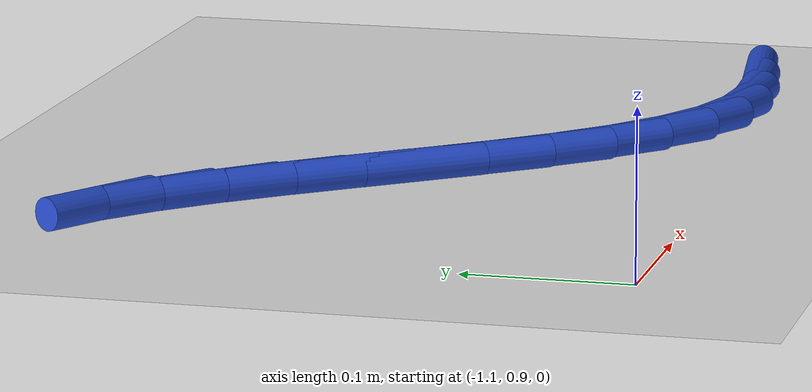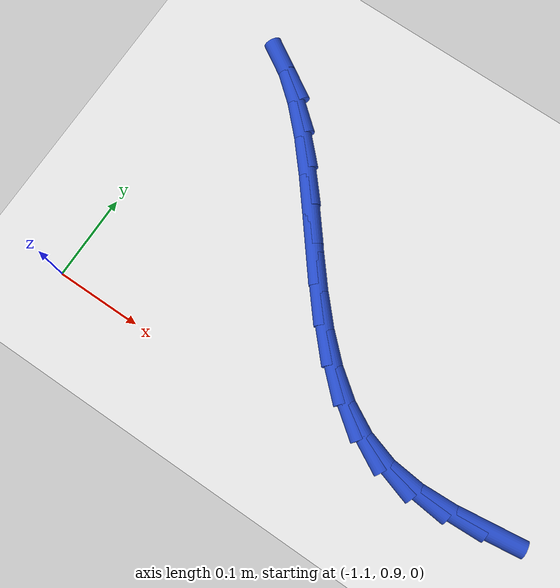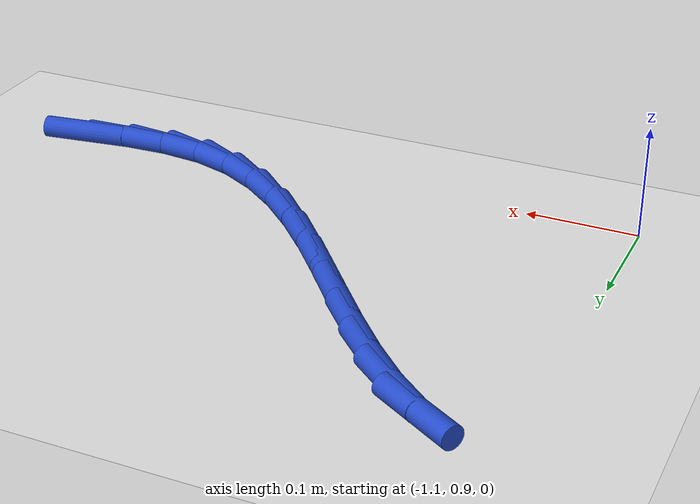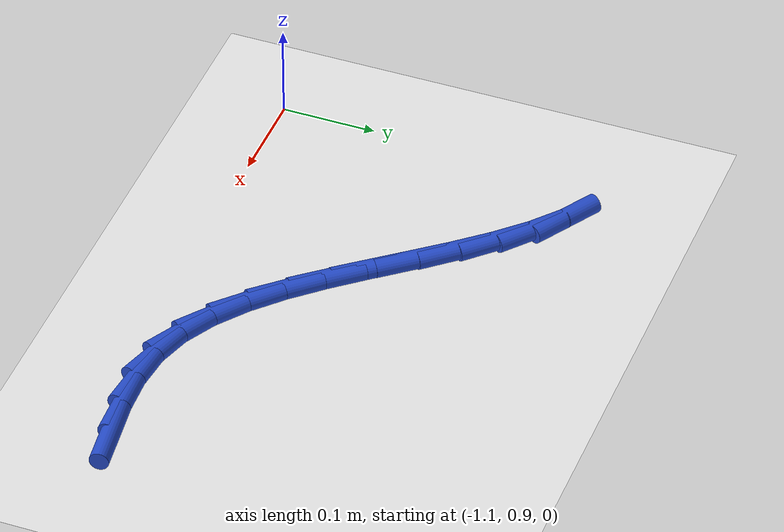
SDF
<sdf version="1.6">
 <world name="default">
  <model name="ground_plane">
   <static>1</static>
   <link name="link">
    <collision name="collision">
     <geometry><plane><normal>0 0 1</normal><size>100 100</size></plane></geometry>
     <surface><friction><ode><mu>100</mu><mu2>50</mu2></ode></friction></surface>
    </collision>
    <visual name="visual">
     <cast_shadows>0</cast_shadows>
     <geometry><plane><normal>0 0 1</normal><size>100 100</size></plane></geometry>
     <material>
      <script><uri>file://media/materials/scripts/gazebo.material</uri><name>Gazebo/WhiteGlow</name></script>
     </material>
    </visual>
   </link>
  </model>
  <model name="line">
   <link name="link_30">
    <pose>-0.5695827840220269 0.9301770698676701 0.01 0 1.57 0.13200955417578925</pose>
    <collision name="collision">
     <geometry><cylinder><radius>0.01</radius><length>0.08</length></cylinder></geometry>
    </collision>
    <visual name="visual">
     <material>
      <script><name>Gazebo/Blue</name><uri>file://media/materials/scripts/gazebo.material</uri></script>
     </material>
     <geometry><cylinder><radius>0.01</radius><length>0.08</length></cylinder></geometry>
    </visual>
   </link>
   <link name="link_31">
    <pose>-0.6113882541014052 0.924626065979148 0.01 0 1.57 0.04483684213266937</pose>
    <collision name="collision">
     <geometry><cylinder><radius>0.01</radius><length>0.08</length></cylinder></geometry>
    </collision>
    <visual name="visual">
     <material>
      <script><name>Gazebo/Blue</name><uri>file://media/materials/scripts/gazebo.material</uri></script>
     </material>
     <geometry><cylinder><radius>0.01</radius><length>0.08</length></cylinder></geometry>
    </visual>
   </link>
   <link name="link_32">
    <pose>-0.6522663766100993 0.922791990849121 0.01 0 1.57 -0.09760704919171943</pose>
    <collision name="collision">
     <geometry><cylinder><radius>0.01</radius><length>0.08</length></cylinder></geometry>
    </collision>
    <visual name="visual">
     <material>
      <script><name>Gazebo/Blue</name><uri>file://media/materials/scripts/gazebo.material</uri></script>
     </material>
     <geometry><cylinder><radius>0.01</radius><length>0.08</length></cylinder></geometry>
    </visual>
   </link>
   <link name="link_33">
    <pose>-0.6914948166339101 0.9266331693557902 0.01 0 1.57 -0.29641620539197827</pose>
    <collision name="collision">
     <geometry><cylinder><radius>0.01</radius><length>0.08</length></cylinder></geometry>
    </collision>
    <visual name="visual">
     <material>
      <script><name>Gazebo/Blue</name><uri>file://media/materials/scripts/gazebo.material</uri></script>
     </material>
     <geometry><cylinder><radius>0.01</radius><length>0.08</length></cylinder></geometry>
    </visual>
   </link>
   <link name="link_34">
    <pose>-0.7284164575644547 0.9379095501245138 0.01 0 1.57 -0.4914064081527176</pose>
    <collision name="collision">
     <geometry><cylinder><radius>0.01</radius><length>0.08</length></cylinder></geometry>
    </collision>
    <visual name="visual">
     <material>
      <script><name>Gazebo/Blue</name><uri>file://media/materials/scripts/gazebo.material</uri></script>
     </material>
     <geometry><cylinder><radius>0.01</radius><length>0.08</length></cylinder></geometry>
    </visual>
   </link>
   <link name="link_35">
    <pose>-0.7630164923608376 0.9564273517110709 0.01 0 1.57 -0.6431609272816179</pose>
    <collision name="collision">
     <geometry><cylinder><radius>0.01</radius><length>0.08</length></cylinder></geometry>
    </collision>
    <visual name="visual">
     <material>
      <script><name>Gazebo/Blue</name><uri>file://media/materials/scripts/gazebo.material</uri></script>
     </material>
     <geometry><cylinder><radius>0.01</radius><length>0.08</length></cylinder></geometry>
    </visual>
   </link>
   <link name="link_36">
    <pose>-0.7956453997328672 0.9808816933022234 0.01 0 1.57 -0.7531336245590704</pose>
    <collision name="collision">
     <geometry><cylinder><radius>0.01</radius><length>0.08</length></cylinder></geometry>
    </collision>
    <visual name="visual">
     <material>
      <script><name>Gazebo/Blue</name><uri>file://media/materials/scripts/gazebo.material</uri></script>
     </material>
     <geometry><cylinder><radius>0.01</radius><length>0.08</length></cylinder></geometry>
    </visual>
   </link>
   <link name="link_37">
    <pose>-0.8266578770756408 1.0099548619976593 0.01 0 1.57 -0.8276030585605672</pose>
    <collision name="collision">
     <geometry><cylinder><radius>0.01</radius><length>0.08</length></cylinder></geometry>
    </collision>
    <visual name="visual">
     <material>
      <script><name>Gazebo/Blue</name><uri>file://media/materials/scripts/gazebo.material</uri></script>
     </material>
     <geometry><cylinder><radius>0.01</radius><length>0.08</length></cylinder></geometry>
    </visual>
   </link>
   <link name="link_38">
    <pose>-0.8564086217842543 1.042329144897065 0.01 0 1.57 -0.8724223237064609</pose>
    <collision name="collision">
     <geometry><cylinder><radius>0.01</radius><length>0.08</length></cylinder></geometry>
    </collision>
    <visual name="visual">
     <material>
      <script><name>Gazebo/Blue</name><uri>file://media/materials/scripts/gazebo.material</uri></script>
     </material>
     <geometry><cylinder><radius>0.01</radius><length>0.08</length></cylinder></geometry>
    </visual>
   </link>
   <link name="link_39">
    <pose>-0.8852523312538046 1.0766868291001277 0.01 0 1.57 -0.891326140688629</pose>
    <collision name="collision">
     <geometry><cylinder><radius>0.01</radius><length>0.08</length></cylinder></geometry>
    </collision>
    <visual name="visual">
     <material>
      <script><name>Gazebo/Blue</name><uri>file://media/materials/scripts/gazebo.material</uri></script>
     </material>
     <geometry><cylinder><radius>0.01</radius><length>0.08</length></cylinder></geometry>
    </visual>
   </link>
   <link name="link_40">
    <pose>-0.9135437028793886 1.1117102017065348 0.01 0 1.57 -0.885559882948281</pose>
    <collision name="collision">
     <geometry><cylinder><radius>0.01</radius><length>0.08</length></cylinder></geometry>
    </collision>
    <visual name="visual">
     <material>
      <script><name>Gazebo/Blue</name><uri>file://media/materials/scripts/gazebo.material</uri></script>
     </material>
     <geometry><cylinder><radius>0.01</radius><length>0.08</length></cylinder></geometry>
    </visual>
   </link>
   <link name="link_41">
    <pose>-0.9416374340561025 1.1460815498159729 0.01 0 1.57 -0.8537278694690869</pose>
    <collision name="collision">
     <geometry><cylinder><radius>0.01</radius><length>0.08</length></cylinder></geometry>
    </collision>
    <visual name="visual">
     <material>
      <script><name>Gazebo/Blue</name><uri>file://media/materials/scripts/gazebo.material</uri></script>
     </material>
     <geometry><cylinder><radius>0.01</radius><length>0.08</length></cylinder></geometry>
    </visual>
   </link>
   <link name="link_42">
    <pose>-0.9698882221790432 1.1784831605281298 0.01 0 1.57 -0.7914733820420172</pose>
    <collision name="collision">
     <geometry><cylinder><radius>0.01</radius><length>0.08</length></cylinder></geometry>
    </collision>
    <visual name="visual">
     <material>
      <script><name>Gazebo/Blue</name><uri>file://media/materials/scripts/gazebo.material</uri></script>
     </material>
     <geometry><cylinder><radius>0.01</radius><length>0.08</length></cylinder></geometry>
    </visual>
   </link>
   <link name="link_43">
    <pose>-0.9986507646433075 1.2075973209426918 0.01 0 1.57 -0.6911055287473408</pose>
    <collision name="collision">
     <geometry><cylinder><radius>0.01</radius><length>0.08</length></cylinder></geometry>
    </collision>
    <visual name="visual">
     <material>
      <script><name>Gazebo/Blue</name><uri>file://media/materials/scripts/gazebo.material</uri></script>
     </material>
     <geometry><cylinder><radius>0.01</radius><length>0.08</length></cylinder></geometry>
    </visual>
   </link>
   <link name="link_44">
    <pose>-1.0282797588439916 1.2321063181593468 0.01 0 1.57 -0.5422297799987283</pose>
    <collision name="collision">
     <geometry><cylinder><radius>0.01</radius><length>0.08</length></cylinder></geometry>
    </collision>
    <visual name="visual">
     <material>
      <script><name>Gazebo/Blue</name><uri>file://media/materials/scripts/gazebo.material</uri></script>
     </material>
     <geometry><cylinder><radius>0.01</radius><length>0.08</length></cylinder></geometry>
    </visual>
   </link>
  </model>
 </world>
</sdf>
